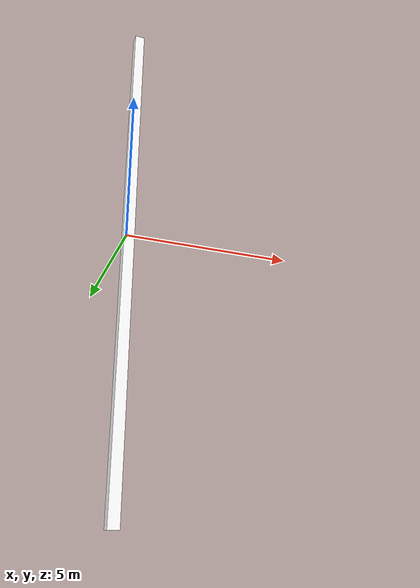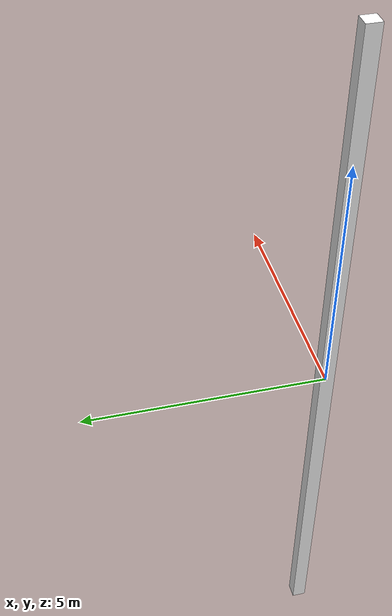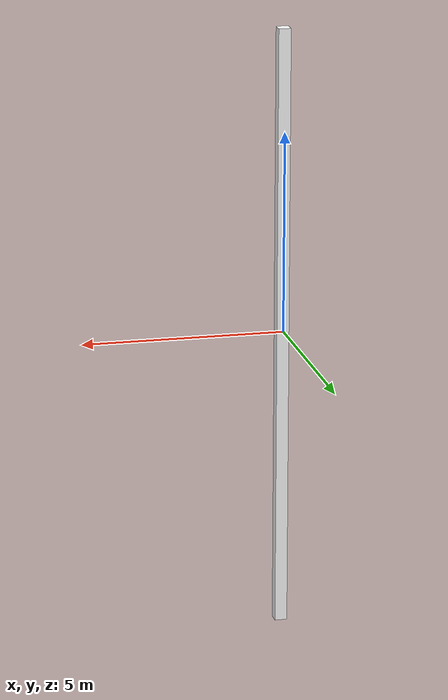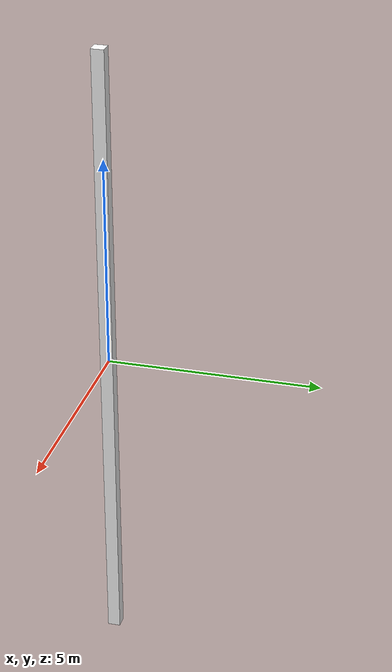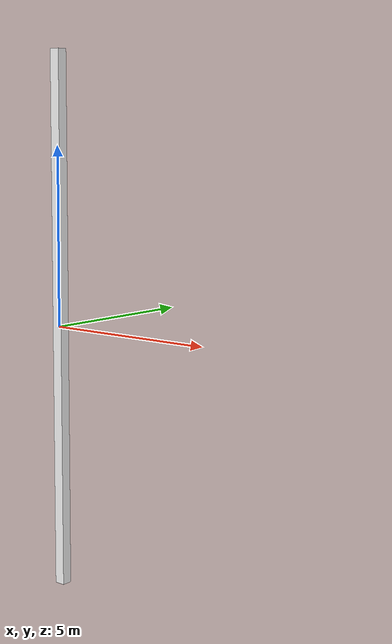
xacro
<?xml version="1.0"?>
<robot xmlns:xacro="http://www.ros.org/wiki/xacro" name="robot_name">

    <material name="white">
        <color rgba="1 1 1 1"/>
    </material>

    <material name="orange">
        <color rgba="1 0.3 0.1 1.0"/>
    </material>

    <material name="blue">
        <color rgba="0.2 0.2 1 1"/>
    </material>

    <material name="black">
        <color rgba="0.0 0.0 0.0 1"/>
    </material>

    <link name="base_link">

    </link>

    <joint name="chassis_joint" type="fixed">
        <parent link="base_link"/>
        <child link="chassis"/>
        <origin xyz="-0.1 0 0"/>
    </joint>

    <link name="chassis">
        <visual>
            <origin xyz="0.15 0.0 0.075"/>
            <geometry>
                <box size="0.3 0.3 015"/>
            </geometry>
            <material name="white">

            </material>
        </visual>
    </link>

</robot>
